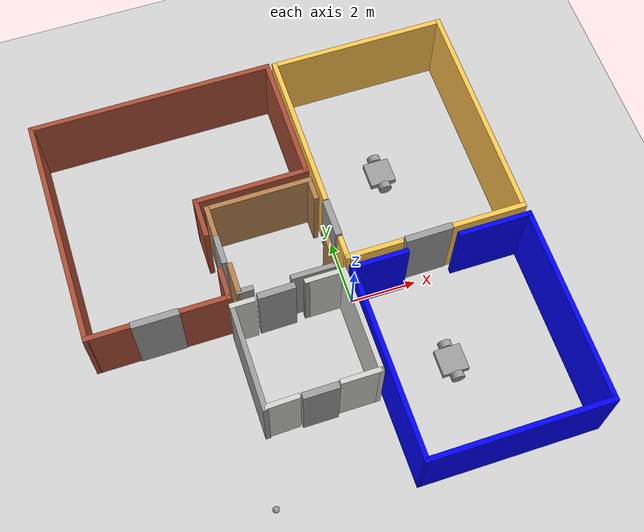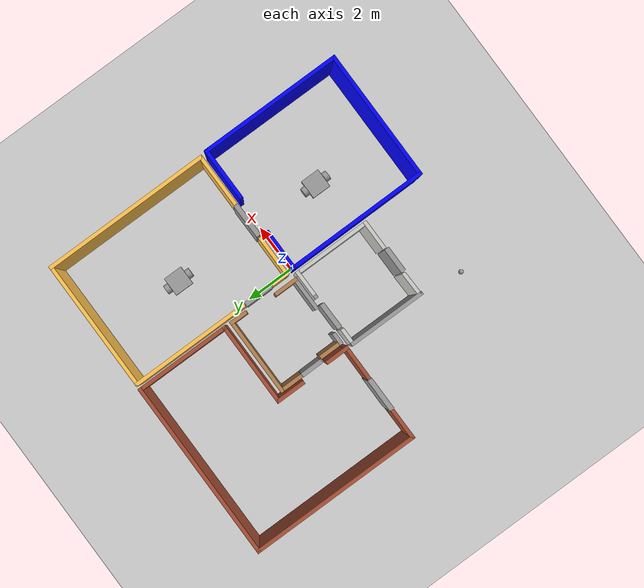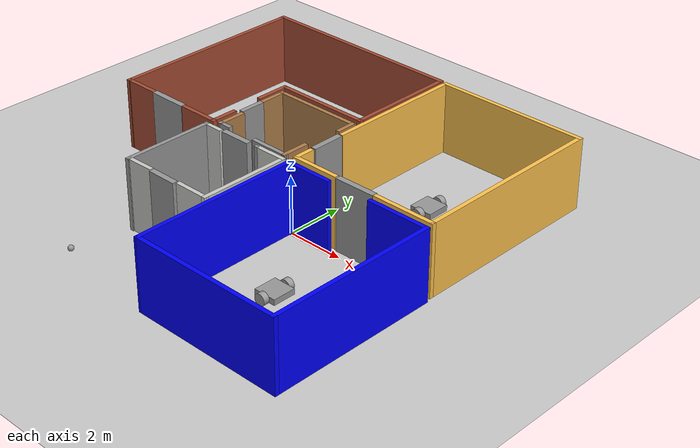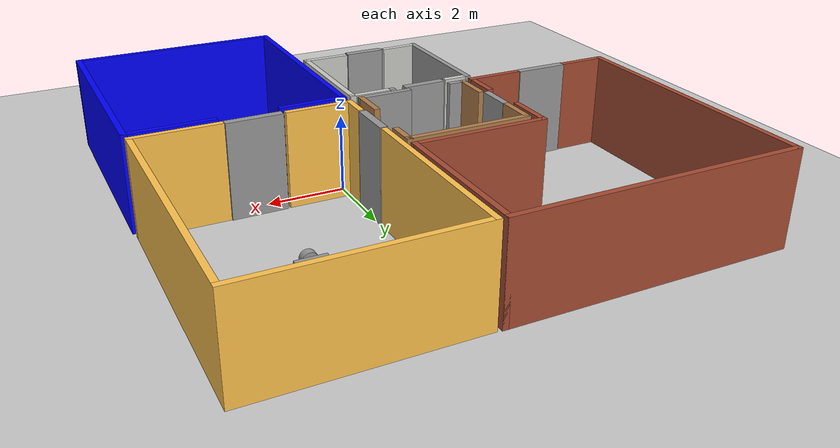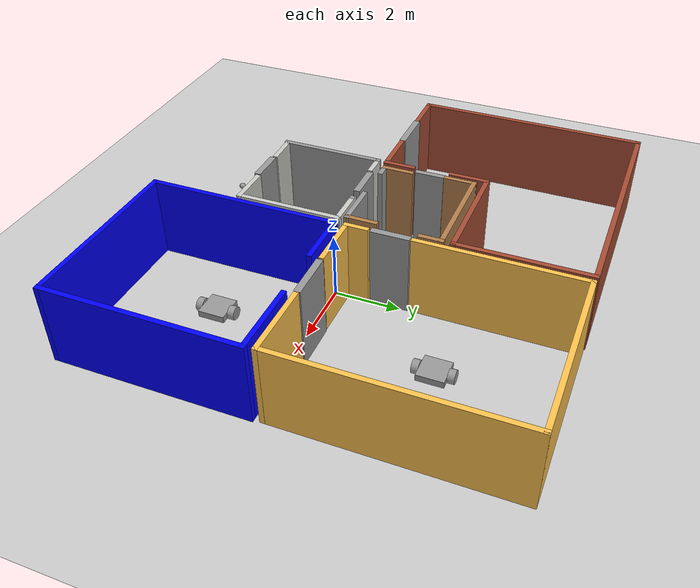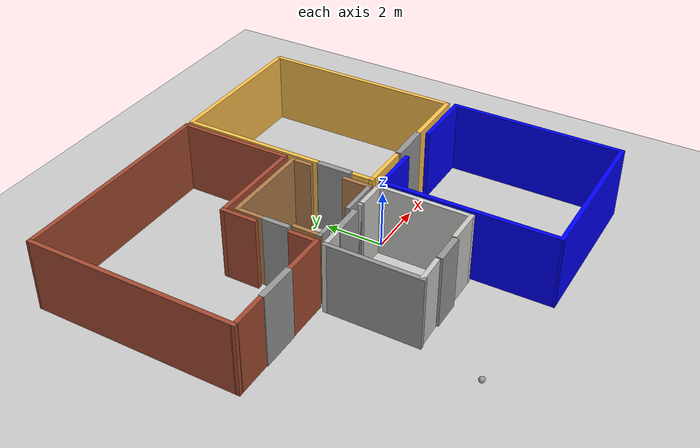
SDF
<sdf version="1.7">
 <world name="default">
  <plugin name="welcome" filename="libwelcome.so"/>
  <light name="sun" type="directional">
   <pose>0 0 10 0 -0 0</pose>
   <diffuse>0.8 0.8 0.8 1</diffuse>
   <specular>0.2 0.2 0.2 1</specular>
   <attenuation>
    <range>1000</range>
    <constant>0.9</constant>
    <linear>0.01</linear>
    <quadratic>0.001</quadratic>
   </attenuation>
   <direction>-0.5 0.1 -0.9</direction>
   <spot><inner_angle>0</inner_angle><outer_angle>0</outer_angle><falloff>0</falloff></spot>
  </light>
  <model name="ground_plane">
   <static>1</static>
   <link name="link">
    <collision name="collision">
     <geometry><plane><normal>0 0 1</normal><size>100 100</size></plane></geometry>
     <surface>
      <contact><collide_bitmask>65535</collide_bitmask></contact>
      <friction><ode><mu>100</mu><mu2>50</mu2></ode></friction>
     </surface>
    </collision>
    <visual name="visual">
     <cast_shadows>0</cast_shadows>
     <geometry><plane><normal>0 0 1</normal><size>100 100</size></plane></geometry>
     <material>
      <script><uri>file://media/materials/scripts/gazebo.material</uri><name>Gazebo/Grey</name></script>
     </material>
    </visual>
   </link>
  </model>
  <gravity>0 0 -9.8</gravity>
  <magnetic_field>6e-06 2.3e-05 -4.2e-05</magnetic_field>
  <atmosphere type="adiabatic"/>
  <physics type="ode">
   <max_step_size>0.001</max_step_size>
   <real_time_factor>1</real_time_factor>
   <real_time_update_rate>1000</real_time_update_rate>
  </physics>
  <scene><ambient>0.4 0.4 0.4 1</ambient><background>0.7 0.7 0.7 1</background><shadows>1</shadows></scene>
  <spherical_coordinates>
   <surface_model>EARTH_WGS84</surface_model>
   <latitude_deg>0</latitude_deg>
   <longitude_deg>0</longitude_deg>
   <elevation>0</elevation>
   <heading_deg>0</heading_deg>
  </spherical_coordinates>
  <model name="Building_1">
   <pose>-1.20257 0.697906 0 0 -0 0</pose>
   <link name="Door_1">
    <collision name="Door_1_Collision">
     <geometry><box><size>0.9 0.17 2.5</size></box></geometry>
     <pose>0 0 1.25 0 -0 0</pose>
    </collision>
    <visual name="Door_1_Visual">
     <pose>0 0 1.25 0 -0 0</pose>
     <geometry><box><size>0.9 0.17 2.5</size></box></geometry>
     <material>
      <script><uri>file://media/materials/scripts/gazebo.material</uri><name>Gazebo/Grey</name></script>
     </material>
    </visual>
    <pose>-2.25547 0.961124 0 0 0 -1.56451</pose>
   </link>
   <link name="Door_2">
    <collision name="Door_2_Collision">
     <geometry><box><size>1.163 0.2 2.5</size></box></geometry>
     <pose>0 0 1.25 0 -0 0</pose>
    </collision>
    <visual name="Door_2_Visual">
     <pose>0 0 1.25 0 -0 0</pose>
     <geometry><box><size>1.163 0.2 2.5</size></box></geometry>
     <material>
      <script><uri>file://media/materials/scripts/gazebo.material</uri><name>Gazebo/Grey</name></script>
     </material>
    </visual>
    <pose>1.08147 0.950952 0 0 -0 1.57576</pose>
   </link>
   <link name="Door_3">
    <collision name="Door_3_Collision">
     <geometry><box><size>1.112 0.2 2.5</size></box></geometry>
     <pose>0 0 1.25 0 -0 0</pose>
    </collision>
    <visual name="Door_3_Visual">
     <pose>0 0 1.25 0 -0 0</pose>
     <geometry><box><size>1.112 0.2 2.5</size></box></geometry>
     <material>
      <script><uri>file://media/materials/scripts/gazebo.material</uri><name>Gazebo/Grey</name></script>
     </material>
    </visual>
    <pose>-1.12475 -0.741125 0 0 -0 -3.13157</pose>
   </link>
   <link name="Door_4">
    <collision name="Door_4_Collision">
     <geometry><box><size>1.43038 0.2 2.5</size></box></geometry>
     <pose>0 0 1.25 0 -0 0</pose>
    </collision>
    <visual name="Door_4_Visual">
     <pose>0 0 1.25 0 -0 0</pose>
     <geometry><box><size>1.43038 0.2 2.5</size></box></geometry>
     <material>
      <script><uri>file://media/materials/scripts/gazebo.material</uri><name>Gazebo/Grey</name></script>
     </material>
    </visual>
    <pose>3.54418 -0.359254 0 0 0 -3.13213</pose>
   </link>
   <link name="Door_5">
    <collision name="Door_5_Collision">
     <geometry><box><size>1.387 0.2 2.5</size></box></geometry>
     <pose>0 0 1.25 0 -0 0</pose>
    </collision>
    <visual name="Door_5_Visual">
     <pose>0 0 1.25 0 -0 0</pose>
     <geometry><box><size>1.387 0.2 2.5</size></box></geometry>
     <material>
      <script><uri>file://media/materials/scripts/gazebo.material</uri><name>Gazebo/Grey</name></script>
     </material>
    </visual>
    <pose>-4.54403 -0.50509 0 0 -0 0</pose>
   </link>
   <link name="Wall_11">
    <collision name="Wall_11_Collision">
     <geometry><box><size>7.17849 0.15 2.5</size></box></geometry>
     <pose>0 0 1.25 0 -0 0</pose>
    </collision>
    <visual name="Wall_11_Visual">
     <pose>0 0 1.25 0 -0 0</pose>
     <geometry><box><size>7.17849 0.15 2.5</size></box></geometry>
     <material>
      <script><uri>file://media/materials/scripts/gazebo.material</uri><name>Gazebo/Bricks</name></script>
      <ambient>1 1 1 1</ambient>
     </material>
     <meta><layer>0</layer></meta>
    </visual>
    <pose>-6.49932 3.00434 0 0 -0 1.57037</pose>
   </link>
   <link name="Wall_13">
    <collision name="Wall_13_Collision">
     <geometry><box><size>5 0.15 2.5</size></box></geometry>
     <pose>0 0 1.25 0 -0 0</pose>
    </collision>
    <visual name="Wall_13_Visual">
     <pose>0 0 1.25 0 -0 0</pose>
     <geometry><box><size>5 0.15 2.5</size></box></geometry>
     <material>
      <script><uri>file://media/materials/scripts/gazebo.material</uri><name>Gazebo/Grey</name></script>
      <ambient>1 0.764706 0.305882 1</ambient>
     </material>
     <meta><layer>0</layer></meta>
    </visual>
    <pose>1.09218 4.06384 0 0 -0 -1.5708</pose>
   </link>
   <link name="Wall_15">
    <collision name="Wall_15_Collision">
     <geometry><box><size>5.5 0.15 2.5</size></box></geometry>
     <pose>0 0 1.25 0 -0 0</pose>
    </collision>
    <visual name="Wall_15_Visual">
     <pose>0 0 1.25 0 -0 0</pose>
     <geometry><box><size>5.5 0.15 2.5</size></box></geometry>
     <material>
      <script><uri>file://media/materials/scripts/gazebo.material</uri><name>Gazebo/Grey</name></script>
      <ambient>1 0.764706 0.305882 1</ambient>
     </material>
     <meta><layer>0</layer></meta>
    </visual>
    <pose>3.76731 6.48888 0 0 -0 1.2e-05</pose>
   </link>
   <link name="Wall_16">
    <collision name="Wall_16_Collision">
     <geometry><box><size>7 0.15 2.5</size></box></geometry>
     <pose>0 0 1.25 0 -0 0</pose>
    </collision>
    <visual name="Wall_16_Visual">
     <pose>0 0 1.25 0 -0 0</pose>
     <geometry><box><size>7 0.15 2.5</size></box></geometry>
     <material>
      <script><uri>file://media/materials/scripts/gazebo.material</uri><name>Gazebo/Grey</name></script>
      <ambient>1 0.764706 0.305882 1</ambient>
     </material>
     <meta><layer>0</layer></meta>
    </visual>
    <pose>6.44245 3.06391 0 0 -0 -1.5708</pose>
   </link>
   <link name="Wall_20">
    <collision name="Wall_20_Collision">
     <geometry><box><size>0.75 0.15 2.5</size></box></geometry>
     <pose>0 0 1.25 0 -0 0</pose>
    </collision>
    <visual name="Wall_20_Visual">
     <pose>0 0 1.25 0 -0 0</pose>
     <geometry><box><size>0.75 0.15 2.5</size></box></geometry>
     <material>
      <script><uri>file://media/materials/scripts/gazebo.material</uri><name>Gazebo/Grey</name></script>
      <ambient>1 0.764706 0.305882 1</ambient>
     </material>
     <meta><layer>0</layer></meta>
    </visual>
    <pose>1.09245 -0.061091 0 0 -0 1.5708</pose>
   </link>
   <link name="Wall_29">
    <collision name="Wall_29_Collision">
     <geometry><box><size>3.5 0.15 2.5</size></box></geometry>
     <pose>0 0 1.25 0 -0 0</pose>
    </collision>
    <visual name="Wall_29_Visual">
     <pose>0 0 1.25 0 -0 0</pose>
     <geometry><box><size>3.5 0.15 2.5</size></box></geometry>
     <material>
      <script><uri>file://media/materials/scripts/gazebo.material</uri><name>Gazebo/Bricks</name></script>
      <ambient>1 1 1 1</ambient>
     </material>
     <meta><layer>0</layer></meta>
    </visual>
    <pose>-0.822824 2.66884 0 0 -0 3.14159</pose>
   </link>
   <link name="Wall_3">
    <collision name="Wall_3_Collision">
     <geometry><box><size>7.5 0.15 2.5</size></box></geometry>
     <pose>0 0 1.25 0 -0 0</pose>
    </collision>
    <visual name="Wall_3_Visual">
     <pose>0 0 1.25 0 -0 0</pose>
     <geometry><box><size>7.5 0.15 2.5</size></box></geometry>
     <material>
      <script><uri>file://media/materials/scripts/gazebo.material</uri><name>Gazebo/Bricks</name></script>
      <ambient>1 1 1 1</ambient>
     </material>
     <meta><layer>0</layer></meta>
    </visual>
    <pose>-2.82282 6.51884 0 0 -0 0</pose>
   </link>
   <link name="Wall_30">
    <collision name="Wall_30_Collision">
     <geometry><box><size>1.25 0.15 2.5</size></box></geometry>
     <pose>0 0 1.25 0 -0 0</pose>
    </collision>
    <visual name="Wall_30_Visual">
     <pose>0 0 1.25 0 -0 0</pose>
     <geometry><box><size>1.25 0.15 2.5</size></box></geometry>
     <material>
      <script><uri>file://media/materials/scripts/gazebo.material</uri><name>Gazebo/Bricks</name></script>
      <ambient>1 1 1 1</ambient>
     </material>
     <meta><layer>0</layer></meta>
    </visual>
    <pose>-2.49782 2.11884 0 0 -0 -1.5708</pose>
   </link>
   <link name="Wall_32">
    <collision name="Wall_32_Collision">
     <geometry><box><size>1 0.15 2.5</size></box></geometry>
     <pose>0 0 1.25 0 -0 0</pose>
    </collision>
    <visual name="Wall_32_Visual">
     <pose>0 0 1.25 0 -0 0</pose>
     <geometry><box><size>1 0.15 2.5</size></box></geometry>
     <material>
      <script><uri>file://media/materials/scripts/gazebo.material</uri><name>Gazebo/Wood</name></script>
      <ambient>1 1 1 1</ambient>
     </material>
     <meta><layer>0</layer></meta>
    </visual>
    <pose>-2.25582 1.91284 0 0 -0 1.5708</pose>
   </link>
   <link name="Wall_33">
    <collision name="Wall_33_Collision">
     <geometry><box><size>3.25 0.15 2.5</size></box></geometry>
     <pose>0 0 1.25 0 -0 0</pose>
    </collision>
    <visual name="Wall_33_Visual">
     <pose>0 0 1.25 0 -0 0</pose>
     <geometry><box><size>3.25 0.15 2.5</size></box></geometry>
     <material>
      <script><uri>file://media/materials/scripts/gazebo.material</uri><name>Gazebo/Wood</name></script>
      <ambient>1 1 1 1</ambient>
     </material>
     <meta><layer>0</layer></meta>
    </visual>
    <pose>-0.705824 2.33784 0 0 -0 0</pose>
   </link>
   <link name="Wall_34">
    <collision name="Wall_34_Collision">
     <geometry><box><size>0.75 0.15 2.5</size></box></geometry>
     <pose>0 0 1.25 0 -0 0</pose>
    </collision>
    <visual name="Wall_34_Visual">
     <pose>0 0 1.25 0 -0 0</pose>
     <geometry><box><size>0.75 0.15 2.5</size></box></geometry>
     <material>
      <script><uri>file://media/materials/scripts/gazebo.material</uri><name>Gazebo/Wood</name></script>
      <ambient>1 1 1 1</ambient>
     </material>
     <meta><layer>0</layer></meta>
    </visual>
    <pose>0.844176 2.03784 0 0 -0 -1.5708</pose>
   </link>
   <link name="Wall_4">
    <collision name="Wall_4_Collision">
     <geometry><box><size>4 0.15 2.5</size></box></geometry>
     <pose>0 0 1.25 0 -0 0</pose>
    </collision>
    <visual name="Wall_4_Visual">
     <pose>0 0 1.25 0 -0 0</pose>
     <geometry><box><size>4 0.15 2.5</size></box></geometry>
     <material>
      <script><uri>file://media/materials/scripts/gazebo.material</uri><name>Gazebo/Bricks</name></script>
      <ambient>1 1 1 1</ambient>
     </material>
     <meta><layer>0</layer></meta>
    </visual>
    <pose>0.852176 4.59384 0 0 -0 -1.5708</pose>
   </link>
   <link name="Wall_43">
    <collision name="Wall_43_Collision">
     <geometry><box><size>1 0.15 2.5</size></box></geometry>
     <pose>0 0 1.25 0 -0 0</pose>
    </collision>
    <visual name="Wall_43_Visual">
     <pose>0 0 1.25 0 -0 0</pose>
     <geometry><box><size>1 0.15 2.5</size></box></geometry>
     <material>
      <script><uri>file://media/materials/scripts/gazebo.material</uri><name>Gazebo/Wood</name></script>
      <ambient>1 1 1 1</ambient>
     </material>
     <meta><layer>0</layer></meta>
    </visual>
    <pose>0.726223 -0.064068 0 0 -0 1.5708</pose>
   </link>
   <link name="Wall_45">
    <collision name="Wall_45_Collision">
     <geometry><box><size>0.5 0.15 2.5</size></box></geometry>
     <pose>0 0 1.25 0 -0 0</pose>
    </collision>
    <visual name="Wall_45_Visual">
     <pose>0 0 1.25 0 -0 0</pose>
     <geometry><box><size>0.5 0.15 2.5</size></box></geometry>
     <material>
      <script><uri>file://media/materials/scripts/gazebo.material</uri><name>Gazebo/Grey</name></script>
      <ambient>1 1 1 1</ambient>
     </material>
     <meta><layer>0</layer></meta>
    </visual>
    <pose>-1.95262 -0.447317 0 0 -0 3.14067</pose>
   </link>
   <link name="Wall_46">
    <collision name="Wall_46_Collision">
     <geometry><box><size>1 0.15 2.5</size></box></geometry>
     <pose>0 0 1.25 0 -0 0</pose>
    </collision>
    <visual name="Wall_46_Visual">
     <pose>0 0 1.25 0 -0 0</pose>
     <geometry><box><size>1 0.15 2.5</size></box></geometry>
     <material>
      <script><uri>file://media/materials/scripts/gazebo.material</uri><name>Gazebo/Wood</name></script>
      <ambient>1 1 1 1</ambient>
     </material>
     <meta><layer>0</layer></meta>
    </visual>
    <pose>-2.12782 -0.022155 0 0 -0 1.5708</pose>
   </link>
   <link name="Wall_50">
    <collision name="Wall_50_Collision">
     <geometry><box><size>1 0.15 2.5</size></box></geometry>
     <pose>0 0 1.25 0 -0 0</pose>
    </collision>
    <visual name="Wall_50_Visual">
     <pose>0 0 1.25 0 -0 0</pose>
     <geometry><box><size>1 0.15 2.5</size></box></geometry>
     <material>
      <script><uri>file://media/materials/scripts/gazebo.material</uri><name>Gazebo/CeilingTiled</name></script>
      <ambient>1 1 1 1</ambient>
     </material>
     <meta><layer>0</layer></meta>
    </visual>
    <pose>-1.93527 -3.85039 0 0 -0 -3.11679</pose>
   </link>
   <link name="Wall_53">
    <collision name="Wall_53_Collision">
     <geometry><box><size>1.25 0.15 2.5</size></box></geometry>
     <pose>0 0 1.25 0 -0 0</pose>
    </collision>
    <visual name="Wall_53_Visual">
     <pose>0 0 1.25 0 -0 0</pose>
     <geometry><box><size>1.25 0.15 2.5</size></box></geometry>
     <material>
      <script><uri>file://media/materials/scripts/gazebo.material</uri><name>Gazebo/CeilingTiled</name></script>
      <ambient>1 1 1 1</ambient>
     </material>
     <meta><layer>0</layer></meta>
    </visual>
    <pose>0.326535 -3.81399 0 0 -0 0</pose>
   </link>
   <link name="Wall_54">
    <collision name="Wall_54_Collision">
     <geometry><box><size>3.25 0.15 2.5</size></box></geometry>
     <pose>0 0 1.25 0 -0 0</pose>
    </collision>
    <visual name="Wall_54_Visual">
     <pose>0 0 1.25 0 -0 0</pose>
     <geometry><box><size>3.25 0.15 2.5</size></box></geometry>
     <material>
      <script><uri>file://media/materials/scripts/gazebo.material</uri><name>Gazebo/CeilingTiled</name></script>
      <ambient>1 1 1 1</ambient>
     </material>
     <meta><layer>0</layer></meta>
    </visual>
    <pose>0.876356 -2.26407 0 0 -0 1.57091</pose>
   </link>
   <link name="Wall_55">
    <collision name="Wall_55_Collision">
     <geometry><box><size>1.25 0.15 2.5</size></box></geometry>
     <pose>0 0 1.25 0 -0 0</pose>
    </collision>
    <visual name="Wall_55_Visual">
     <pose>0 0 1.25 0 -0 0</pose>
     <geometry><box><size>1.25 0.15 2.5</size></box></geometry>
     <material>
      <script><uri>file://media/materials/scripts/gazebo.material</uri><name>Gazebo/CeilingTiled</name></script>
      <ambient>1 1 1 1</ambient>
     </material>
     <meta><layer>0</layer></meta>
    </visual>
    <pose>0.326176 -0.714155 0 0 -0 3.14159</pose>
   </link>
   <link name="Wall_57">
    <collision name="Wall_57_Collision">
     <geometry><box><size>1 0.15 2.5</size></box></geometry>
     <pose>0 0 1.25 0 -0 0</pose>
    </collision>
    <visual name="Wall_57_Visual">
     <pose>0 0 1.25 0 -0 0</pose>
     <geometry><box><size>1 0.15 2.5</size></box></geometry>
     <material>
      <script><uri>file://media/materials/scripts/gazebo.material</uri><name>Gazebo/Bricks</name></script>
      <ambient>1 1 1 1</ambient>
     </material>
     <meta><layer>0</layer></meta>
    </visual>
    <pose>-2.42682 -0.085155 0 0 -0 -1.5708</pose>
   </link>
   <link name="Wall_58">
    <collision name="Wall_58_Collision">
     <geometry><box><size>1.5 0.15 2.5</size></box></geometry>
     <pose>0 0 1.25 0 -0 0</pose>
    </collision>
    <visual name="Wall_58_Visual">
     <pose>0 0 1.25 0 -0 0</pose>
     <geometry><box><size>1.5 0.15 2.5</size></box></geometry>
     <material>
      <script><uri>file://media/materials/scripts/gazebo.material</uri><name>Gazebo/Bricks</name></script>
      <ambient>1 1 1 1</ambient>
     </material>
     <meta><layer>0</layer></meta>
    </visual>
    <pose>-3.10182 -0.510155 0 0 -0 3.14159</pose>
   </link>
   <link name="Wall_60">
    <collision name="Wall_60_Collision">
     <geometry><box><size>1.3356 0.15 2.5</size></box></geometry>
     <pose>0 0 1.25 0 -0 0</pose>
    </collision>
    <visual name="Wall_60_Visual">
     <pose>0 0 1.25 0 -0 0</pose>
     <geometry><box><size>1.3356 0.15 2.5</size></box></geometry>
     <material>
      <script><uri>file://media/materials/scripts/gazebo.material</uri><name>Gazebo/Bricks</name></script>
      <ambient>1 1 1 1</ambient>
     </material>
     <meta><layer>0</layer></meta>
    </visual>
    <pose>-5.90782 -0.507155 0 0 -0 -3.13653</pose>
   </link>
   <link name="Wall_63">
    <collision name="Wall_63_Collision">
     <geometry><box><size>3.25 0.15 2.5</size></box></geometry>
     <pose>0 0 1.25 0 -0 0</pose>
    </collision>
    <visual name="Wall_63_Visual">
     <pose>0 0 1.25 0 -0 0</pose>
     <geometry><box><size>3.25 0.15 2.5</size></box></geometry>
     <material>
      <script><uri>file://media/materials/scripts/gazebo.material</uri><name>Gazebo/Grey</name></script>
      <ambient>1 1 1 1</ambient>
     </material>
     <meta><layer>0</layer></meta>
    </visual>
    <pose>-2.4296 -2.34418 0 0 -0 -1.5708</pose>
   </link>
   <link name="Wall_65">
    <collision name="Wall_65_Collision">
     <geometry><box><size>0.75 0.15 2.5</size></box></geometry>
     <pose>0 0 1.25 0 -0 0</pose>
    </collision>
    <visual name="Wall_65_Visual">
     <pose>0 0 1.25 0 -0 0</pose>
     <geometry><box><size>0.75 0.15 2.5</size></box></geometry>
     <material>
      <script><uri>file://media/materials/scripts/gazebo.material</uri><name>Gazebo/CeilingTiled</name></script>
      <ambient>1 1 1 1</ambient>
     </material>
     <meta><layer>0</layer></meta>
    </visual>
    <pose>-2.1296 -0.79418 0 0 -0 0</pose>
   </link>
   <link name="Wall_67">
    <collision name="Wall_67_Collision">
     <geometry><box><size>0.15 0.15 2.5</size></box></geometry>
     <pose>0 0 1.25 0 -0 0</pose>
    </collision>
    <visual name="Wall_67_Visual">
     <pose>0 0 1.25 0 -0 0</pose>
     <geometry><box><size>0.15 0.15 2.5</size></box></geometry>
     <material>
      <script><uri>file://media/materials/scripts/gazebo.material</uri><name>Gazebo/Grey</name></script>
      <ambient>1 1 1 1</ambient>
     </material>
     <meta><layer>0</layer></meta>
    </visual>
    <pose>-0.223824 -0.714155 0 0 -0 0</pose>
   </link>
   <link name="Wall_70">
    <collision name="Wall_70_Collision">
     <geometry><box><size>1.42886 0.15 2.5</size></box></geometry>
     <pose>0 0 1.25 0 -0 0</pose>
    </collision>
    <visual name="Wall_70_Visual">
     <pose>0 0 1.25 0 -0 0</pose>
     <geometry><box><size>1.42886 0.15 2.5</size></box></geometry>
     <material>
      <script><uri>file://media/materials/scripts/gazebo.material</uri><name>Gazebo/Grey</name></script>
      <ambient>1 1 1 1</ambient>
     </material>
     <meta><layer>0</layer></meta>
    </visual>
    <pose>0.086794 -0.487296 0 0 -0 -0.00277</pose>
   </link>
   <link name="Wall_72">
    <collision name="Wall_72_Collision">
     <geometry><box><size>1.75 0.15 2.5</size></box></geometry>
     <pose>0 0 1.25 0 -0 0</pose>
    </collision>
    <visual name="Wall_72_Visual">
     <pose>0 0 1.25 0 -0 0</pose>
     <geometry><box><size>1.75 0.15 2.5</size></box></geometry>
     <material>
      <script><uri>file://media/materials/scripts/gazebo.material</uri><name>Gazebo/Grey</name></script>
      <ambient>0 0 1 1</ambient>
     </material>
     <meta><layer>0</layer></meta>
    </visual>
    <pose>1.92837 -0.705222 0 0 -0 0</pose>
   </link>
   <link name="Wall_74">
    <collision name="Wall_74_Collision">
     <geometry><box><size>2.25 0.15 2.5</size></box></geometry>
     <pose>0 0 1.25 0 -0 0</pose>
    </collision>
    <visual name="Wall_74_Visual">
     <pose>0 0 1.25 0 -0 0</pose>
     <geometry><box><size>2.25 0.15 2.5</size></box></geometry>
     <material>
      <script><uri>file://media/materials/scripts/gazebo.material</uri><name>Gazebo/Grey</name></script>
      <ambient>0 0 1 1</ambient>
     </material>
     <meta><layer>0</layer></meta>
    </visual>
    <pose>5.45099 -0.668554 0 0 -0 0</pose>
   </link>
   <link name="Wall_76">
    <collision name="Wall_76_Collision">
     <geometry><box><size>6 0.15 2.5</size></box></geometry>
     <pose>0 0 1.25 0 -0 0</pose>
    </collision>
    <visual name="Wall_76_Visual">
     <pose>0 0 1.25 0 -0 0</pose>
     <geometry><box><size>6 0.15 2.5</size></box></geometry>
     <material>
      <script><uri>file://media/materials/scripts/gazebo.material</uri><name>Gazebo/Grey</name></script>
      <ambient>0 0 1 1</ambient>
     </material>
     <meta><layer>0</layer></meta>
    </visual>
    <pose>6.50099 -3.59355 0 0 -0 -1.5708</pose>
   </link>
   <link name="Wall_77">
    <collision name="Wall_77_Collision">
     <geometry><box><size>5.5 0.15 2.5</size></box></geometry>
     <pose>0 0 1.25 0 -0 0</pose>
    </collision>
    <visual name="Wall_77_Visual">
     <pose>0 0 1.25 0 -0 0</pose>
     <geometry><box><size>5.5 0.15 2.5</size></box></geometry>
     <material>
      <script><uri>file://media/materials/scripts/gazebo.material</uri><name>Gazebo/Grey</name></script>
      <ambient>0 0 1 1</ambient>
     </material>
     <meta><layer>0</layer></meta>
    </visual>
    <pose>3.82599 -6.51855 0 0 -0 3.14159</pose>
   </link>
   <link name="Wall_78">
    <collision name="Wall_78_Collision">
     <geometry><box><size>5.96338 0.15 2.5</size></box></geometry>
     <pose>0 0 1.25 0 -0 0</pose>
    </collision>
    <visual name="Wall_78_Visual">
     <pose>0 0 1.25 0 -0 0</pose>
     <geometry><box><size>5.96338 0.15 2.5</size></box></geometry>
     <material>
      <script><uri>file://media/materials/scripts/gazebo.material</uri><name>Gazebo/Grey</name></script>
      <ambient>0 0 1 1</ambient>
     </material>
     <meta><layer>0</layer></meta>
    </visual>
    <pose>1.13968 -3.61189 0 0 -0 1.57469</pose>
   </link>
   <link name="Wall_80">
    <collision name="Wall_80_Collision">
     <geometry><box><size>1.75 0.15 2.5</size></box></geometry>
     <pose>0 0 1.25 0 -0 0</pose>
    </collision>
    <visual name="Wall_80_Visual">
     <pose>0 0 1.25 0 -0 0</pose>
     <geometry><box><size>1.75 0.15 2.5</size></box></geometry>
     <material>
      <script><uri>file://media/materials/scripts/gazebo.material</uri><name>Gazebo/Grey</name></script>
      <ambient>1 0.764706 0.305882 1</ambient>
     </material>
     <meta><layer>0</layer></meta>
    </visual>
    <pose>1.89245 -0.361091 0 0 -0 0</pose>
   </link>
   <link name="Wall_84">
    <collision name="Wall_84_Collision">
     <geometry><box><size>2.25 0.15 2.5</size></box></geometry>
     <pose>0 0 1.25 0 -0 0</pose>
    </collision>
    <visual name="Wall_84_Visual">
     <pose>0 0 1.25 0 -0 0</pose>
     <geometry><box><size>2.25 0.15 2.5</size></box></geometry>
     <material>
      <script><uri>file://media/materials/scripts/gazebo.material</uri><name>Gazebo/Grey</name></script>
      <ambient>1 0.764706 0.305882 1</ambient>
     </material>
     <meta><layer>0</layer></meta>
    </visual>
    <pose>5.39245 -0.361091 0 0 -0 3.14159</pose>
   </link>
   <link name="Window_0">
    <collision name="Window_0_Collision">
     <geometry><box><size>1.05 0.2 2.5</size></box></geometry>
     <pose>0 0 1.25 0 -0 0</pose>
    </collision>
    <visual name="Window_0_Visual">
     <pose>0 0 1.25 0 -0 0</pose>
     <geometry><box><size>1.05 0.2 2.5</size></box></geometry>
     <material>
      <script><uri>file://media/materials/scripts/gazebo.material</uri><name>Gazebo/Grey</name></script>
     </material>
    </visual>
    <pose>-0.863204 -3.87716 0 0 -0 0</pose>
   </link>
   <static>1</static>
  </model>
  <model name="Project1_bot">
   <link name="link_0">
    <inertial>
     <mass>1</mass>
     <inertia>
      <ixx>0.166667</ixx>
      <ixy>0</ixy>
      <ixz>0</ixz>
      <iyy>0.166667</iyy>
      <iyz>0</iyz>
      <izz>0.166667</izz>
     </inertia>
    </inertial>
    <visual name="visual">
     <geometry><box><size>0.8 0.8 0.2</size></box></geometry>
     <material>
      <lighting>1</lighting>
      <script><uri>file://media/materials/scripts/gazebo.material</uri><name>Gazebo/Grey</name></script>
      <shader type="pixel"><normal_map>__default__</normal_map></shader>
      <ambient>0.3 0.3 0.3 1</ambient>
      <diffuse>0.7 0.7 0.7 1</diffuse>
      <specular>0.01 0.01 0.01 1</specular>
      <emissive>0 0 0 1</emissive>
     </material>
    </visual>
    <collision name="collision">
     <geometry><box><size>0.8 0.8 0.2</size></box></geometry>
     <surface>
      <friction>
       <ode><mu>1</mu><mu2>1</mu2><fdir1>0 0 0</fdir1><slip1>0</slip1><slip2>0</slip2></ode>
       <torsional>
        <coefficient>1</coefficient>
        <patch_radius>0</patch_radius>
        <surface_radius>0</surface_radius>
        <use_patch_radius>1</use_patch_radius>
        <ode><slip>0</slip></ode>
       </torsional>
      </friction>
      <bounce><restitution_coefficient>0</restitution_coefficient><threshold>1e+06</threshold></bounce>
      <contact>
       <collide_without_contact>0</collide_without_contact>
       <collide_without_contact_bitmask>1</collide_without_contact_bitmask>
       <collide_bitmask>1</collide_bitmask>
       <ode>
        <soft_cfm>0</soft_cfm>
        <soft_erp>0.2</soft_erp>
        <kp>1e+13</kp>
        <kd>1</kd>
        <max_vel>0.01</max_vel>
        <min_depth>0</min_depth>
       </ode>
       <bullet>
        <split_impulse>1</split_impulse>
        <split_impulse_penetration_threshold>-0.01</split_impulse_penetration_threshold>
        <soft_cfm>0</soft_cfm>
        <soft_erp>0.2</soft_erp>
        <kp>1e+13</kp>
        <kd>1</kd>
       </bullet>
      </contact>
     </surface>
    </collision>
   </link>
   <link name="link_1">
    <inertial>
     <mass>1</mass>
     <inertia><ixx>0.145833</ixx><ixy>0</ixy><ixz>0</ixz><iyy>0.145833</iyy><iyz>0</iyz><izz>0.125</izz></inertia>
    </inertial>
    <pose>-0 -0.500019 0 1.5707 -0 0</pose>
    <visual name="visual">
     <geometry><cylinder><radius>0.2</radius><length>0.2</length></cylinder></geometry>
     <material>
      <lighting>1</lighting>
      <script><uri>file://media/materials/scripts/gazebo.material</uri><name>Gazebo/Grey</name></script>
      <shader type="pixel"><normal_map>__default__</normal_map></shader>
      <ambient>0.3 0.3 0.3 1</ambient>
      <diffuse>0.7 0.7 0.7 1</diffuse>
      <specular>0.01 0.01 0.01 1</specular>
      <emissive>0 0 0 1</emissive>
     </material>
    </visual>
    <collision name="collision">
     <geometry><cylinder><radius>0.2</radius><length>0.2</length></cylinder></geometry>
     <surface>
      <friction>
       <ode><mu>1</mu><mu2>1</mu2><fdir1>0 0 0</fdir1><slip1>0</slip1><slip2>0</slip2></ode>
       <torsional>
        <coefficient>1</coefficient>
        <patch_radius>0</patch_radius>
        <surface_radius>0</surface_radius>
        <use_patch_radius>1</use_patch_radius>
        <ode><slip>0</slip></ode>
       </torsional>
      </friction>
      <bounce><restitution_coefficient>0</restitution_coefficient><threshold>1e+06</threshold></bounce>
      <contact>
       <collide_without_contact>0</collide_without_contact>
       <collide_without_contact_bitmask>1</collide_without_contact_bitmask>
       <collide_bitmask>1</collide_bitmask>
       <ode>
        <soft_cfm>0</soft_cfm>
        <soft_erp>0.2</soft_erp>
        <kp>1e+13</kp>
        <kd>1</kd>
        <max_vel>0.01</max_vel>
        <min_depth>0</min_depth>
       </ode>
       <bullet>
        <split_impulse>1</split_impulse>
        <split_impulse_penetration_threshold>-0.01</split_impulse_penetration_threshold>
        <soft_cfm>0</soft_cfm>
        <soft_erp>0.2</soft_erp>
        <kp>1e+13</kp>
        <kd>1</kd>
       </bullet>
      </contact>
     </surface>
    </collision>
   </link>
   <link name="link_1_clone">
    <inertial>
     <mass>1</mass>
     <inertia><ixx>0.145833</ixx><ixy>0</ixy><ixz>0</ixz><iyy>0.145833</iyy><iyz>0</iyz><izz>0.125</izz></inertia>
    </inertial>
    <pose>-0 0.500019 0 1.5707 -0 0</pose>
    <visual name="visual">
     <geometry><cylinder><radius>0.2</radius><length>0.2</length></cylinder></geometry>
     <material>
      <lighting>1</lighting>
      <script><uri>file://media/materials/scripts/gazebo.material</uri><name>Gazebo/Grey</name></script>
      <shader type="pixel"><normal_map>__default__</normal_map></shader>
      <ambient>0.3 0.3 0.3 1</ambient>
      <diffuse>0.7 0.7 0.7 1</diffuse>
      <specular>0.01 0.01 0.01 1</specular>
      <emissive>0 0 0 1</emissive>
     </material>
    </visual>
    <collision name="collision">
     <geometry><cylinder><radius>0.2</radius><length>0.2</length></cylinder></geometry>
     <surface>
      <friction>
       <ode><mu>1</mu><mu2>1</mu2><fdir1>0 0 0</fdir1><slip1>0</slip1><slip2>0</slip2></ode>
       <torsional>
        <coefficient>1</coefficient>
        <patch_radius>0</patch_radius>
        <surface_radius>0</surface_radius>
        <use_patch_radius>1</use_patch_radius>
        <ode><slip>0</slip></ode>
       </torsional>
      </friction>
      <bounce><restitution_coefficient>0</restitution_coefficient><threshold>1e+06</threshold></bounce>
      <contact>
       <collide_without_contact>0</collide_without_contact>
       <collide_without_contact_bitmask>1</collide_without_contact_bitmask>
       <collide_bitmask>1</collide_bitmask>
       <ode>
        <soft_cfm>0</soft_cfm>
        <soft_erp>0.2</soft_erp>
        <kp>1e+13</kp>
        <kd>1</kd>
        <max_vel>0.01</max_vel>
        <min_depth>0</min_depth>
       </ode>
       <bullet>
        <split_impulse>1</split_impulse>
        <split_impulse_penetration_threshold>-0.01</split_impulse_penetration_threshold>
        <soft_cfm>0</soft_cfm>
        <soft_erp>0.2</soft_erp>
        <kp>1e+13</kp>
        <kd>1</kd>
       </bullet>
      </contact>
     </surface>
    </collision>
   </link>
   <joint name="link_0_JOINT_0" type="revolute">
    <parent>link_0</parent>
    <child>link_1</child>
    <axis>
     <xyz>0 0 1</xyz>
     <limit>
      <lower>-1.79769e+308</lower>
      <upper>1.79769e+308</upper>
      <effort>-1</effort>
      <velocity>-1</velocity>
     </limit>
     <dynamics>
      <spring_reference>0</spring_reference>
      <spring_stiffness>0</spring_stiffness>
      <damping>0</damping>
     </dynamics>
    </axis>
    <physics>
     <ode><limit><cfm>0</cfm><erp>0.2</erp></limit><suspension><cfm>0</cfm><erp>0.2</erp></suspension></ode>
    </physics>
   </joint>
   <joint name="link_0_JOINT_1" type="revolute">
    <parent>link_0</parent>
    <child>link_1_clone</child>
    <axis>
     <xyz>0 0 1</xyz>
     <limit>
      <lower>-1.79769e+308</lower>
      <upper>1.79769e+308</upper>
      <effort>-1</effort>
      <velocity>-1</velocity>
     </limit>
     <dynamics>
      <spring_reference>0</spring_reference>
      <spring_stiffness>0</spring_stiffness>
      <damping>0</damping>
     </dynamics>
    </axis>
    <physics>
     <ode><limit><cfm>0</cfm><erp>0.2</erp></limit><suspension><cfm>0</cfm><erp>0.2</erp></suspension></ode>
    </physics>
   </joint>
   <static>0</static>
   <pose>2.2071 3.79291 0.200007 4e-06 -0 0</pose>
  </model>
  <model name="Project1_bot_clone">
   <link name="link_0">
    <inertial>
     <mass>1</mass>
     <inertia>
      <ixx>0.166667</ixx>
      <ixy>0</ixy>
      <ixz>0</ixz>
      <iyy>0.166667</iyy>
      <iyz>0</iyz>
      <izz>0.166667</izz>
     </inertia>
    </inertial>
    <visual name="visual">
     <geometry><box><size>0.8 0.8 0.2</size></box></geometry>
     <material>
      <lighting>1</lighting>
      <script><uri>file://media/materials/scripts/gazebo.material</uri><name>Gazebo/Grey</name></script>
      <shader type="pixel"><normal_map>__default__</normal_map></shader>
      <ambient>0.3 0.3 0.3 1</ambient>
      <diffuse>0.7 0.7 0.7 1</diffuse>
      <specular>0.01 0.01 0.01 1</specular>
      <emissive>0 0 0 1</emissive>
     </material>
    </visual>
    <collision name="collision">
     <geometry><box><size>0.8 0.8 0.2</size></box></geometry>
     <surface>
      <friction>
       <ode><mu>1</mu><mu2>1</mu2><fdir1>0 0 0</fdir1><slip1>0</slip1><slip2>0</slip2></ode>
       <torsional>
        <coefficient>1</coefficient>
        <patch_radius>0</patch_radius>
        <surface_radius>0</surface_radius>
        <use_patch_radius>1</use_patch_radius>
        <ode><slip>0</slip></ode>
       </torsional>
      </friction>
      <bounce><restitution_coefficient>0</restitution_coefficient><threshold>1e+06</threshold></bounce>
      <contact>
       <collide_without_contact>0</collide_without_contact>
       <collide_without_contact_bitmask>1</collide_without_contact_bitmask>
       <collide_bitmask>1</collide_bitmask>
       <ode>
        <soft_cfm>0</soft_cfm>
        <soft_erp>0.2</soft_erp>
        <kp>1e+13</kp>
        <kd>1</kd>
        <max_vel>0.01</max_vel>
        <min_depth>0</min_depth>
       </ode>
       <bullet>
        <split_impulse>1</split_impulse>
        <split_impulse_penetration_threshold>-0.01</split_impulse_penetration_threshold>
        <soft_cfm>0</soft_cfm>
        <soft_erp>0.2</soft_erp>
        <kp>1e+13</kp>
        <kd>1</kd>
       </bullet>
      </contact>
     </surface>
    </collision>
   </link>
   <link name="link_1">
    <inertial>
     <mass>1</mass>
     <inertia><ixx>0.145833</ixx><ixy>0</ixy><ixz>0</ixz><iyy>0.145833</iyy><iyz>0</iyz><izz>0.125</izz></inertia>
    </inertial>
    <pose>-0 -0.500019 0 1.5707 -0 0</pose>
    <visual name="visual">
     <geometry><cylinder><radius>0.2</radius><length>0.2</length></cylinder></geometry>
     <material>
      <lighting>1</lighting>
      <script><uri>file://media/materials/scripts/gazebo.material</uri><name>Gazebo/Grey</name></script>
      <shader type="pixel"><normal_map>__default__</normal_map></shader>
      <ambient>0.3 0.3 0.3 1</ambient>
      <diffuse>0.7 0.7 0.7 1</diffuse>
      <specular>0.01 0.01 0.01 1</specular>
      <emissive>0 0 0 1</emissive>
     </material>
    </visual>
    <collision name="collision">
     <geometry><cylinder><radius>0.2</radius><length>0.2</length></cylinder></geometry>
     <surface>
      <friction>
       <ode><mu>1</mu><mu2>1</mu2><fdir1>0 0 0</fdir1><slip1>0</slip1><slip2>0</slip2></ode>
       <torsional>
        <coefficient>1</coefficient>
        <patch_radius>0</patch_radius>
        <surface_radius>0</surface_radius>
        <use_patch_radius>1</use_patch_radius>
        <ode><slip>0</slip></ode>
       </torsional>
      </friction>
      <bounce><restitution_coefficient>0</restitution_coefficient><threshold>1e+06</threshold></bounce>
      <contact>
       <collide_without_contact>0</collide_without_contact>
       <collide_without_contact_bitmask>1</collide_without_contact_bitmask>
       <collide_bitmask>1</collide_bitmask>
       <ode>
        <soft_cfm>0</soft_cfm>
        <soft_erp>0.2</soft_erp>
        <kp>1e+13</kp>
        <kd>1</kd>
        <max_vel>0.01</max_vel>
        <min_depth>0</min_depth>
       </ode>
       <bullet>
        <split_impulse>1</split_impulse>
        <split_impulse_penetration_threshold>-0.01</split_impulse_penetration_threshold>
        <soft_cfm>0</soft_cfm>
        <soft_erp>0.2</soft_erp>
        <kp>1e+13</kp>
        <kd>1</kd>
       </bullet>
      </contact>
     </surface>
    </collision>
   </link>
   <link name="link_1_clone">
    <inertial>
     <mass>1</mass>
     <inertia><ixx>0.145833</ixx><ixy>0</ixy><ixz>0</ixz><iyy>0.145833</iyy><iyz>0</iyz><izz>0.125</izz></inertia>
    </inertial>
    <pose>-0 0.500019 0 1.5707 -0 0</pose>
    <visual name="visual">
     <geometry><cylinder><radius>0.2</radius><length>0.2</length></cylinder></geometry>
     <material>
      <lighting>1</lighting>
      <script><uri>file://media/materials/scripts/gazebo.material</uri><name>Gazebo/Grey</name></script>
      <shader type="pixel"><normal_map>__default__</normal_map></shader>
      <ambient>0.3 0.3 0.3 1</ambient>
      <diffuse>0.7 0.7 0.7 1</diffuse>
      <specular>0.01 0.01 0.01 1</specular>
      <emissive>0 0 0 1</emissive>
     </material>
    </visual>
    <collision name="collision">
     <geometry><cylinder><radius>0.2</radius><length>0.2</length></cylinder></geometry>
     <surface>
      <friction>
       <ode><mu>1</mu><mu2>1</mu2><fdir1>0 0 0</fdir1><slip1>0</slip1><slip2>0</slip2></ode>
       <torsional>
        <coefficient>1</coefficient>
        <patch_radius>0</patch_radius>
        <surface_radius>0</surface_radius>
        <use_patch_radius>1</use_patch_radius>
        <ode><slip>0</slip></ode>
       </torsional>
      </friction>
      <bounce><restitution_coefficient>0</restitution_coefficient><threshold>1e+06</threshold></bounce>
      <contact>
       <collide_without_contact>0</collide_without_contact>
       <collide_without_contact_bitmask>1</collide_without_contact_bitmask>
       <collide_bitmask>1</collide_bitmask>
       <ode>
        <soft_cfm>0</soft_cfm>
        <soft_erp>0.2</soft_erp>
        <kp>1e+13</kp>
        <kd>1</kd>
        <max_vel>0.01</max_vel>
        <min_depth>0</min_depth>
       </ode>
       <bullet>
        <split_impulse>1</split_impulse>
        <split_impulse_penetration_threshold>-0.01</split_impulse_penetration_threshold>
        <soft_cfm>0</soft_cfm>
        <soft_erp>0.2</soft_erp>
        <kp>1e+13</kp>
        <kd>1</kd>
       </bullet>
      </contact>
     </surface>
    </collision>
   </link>
   <joint name="link_0_JOINT_0" type="revolute">
    <parent>link_0</parent>
    <child>link_1</child>
    <axis>
     <xyz>0 0 1</xyz>
     <limit>
      <lower>-1.79769e+308</lower>
      <upper>1.79769e+308</upper>
      <effort>-1</effort>
      <velocity>-1</velocity>
     </limit>
     <dynamics>
      <spring_reference>0</spring_reference>
      <spring_stiffness>0</spring_stiffness>
      <damping>0</damping>
     </dynamics>
    </axis>
    <physics>
     <ode><limit><cfm>0</cfm><erp>0.2</erp></limit><suspension><cfm>0</cfm><erp>0.2</erp></suspension></ode>
    </physics>
   </joint>
   <joint name="link_0_JOINT_1" type="revolute">
    <parent>link_0</parent>
    <child>link_1_clone</child>
    <axis>
     <xyz>0 0 1</xyz>
     <limit>
      <lower>-1.79769e+308</lower>
      <upper>1.79769e+308</upper>
      <effort>-1</effort>
      <velocity>-1</velocity>
     </limit>
     <dynamics>
      <spring_reference>0</spring_reference>
      <spring_stiffness>0</spring_stiffness>
      <damping>0</damping>
     </dynamics>
    </axis>
    <physics>
     <ode><limit><cfm>0</cfm><erp>0.2</erp></limit><suspension><cfm>0</cfm><erp>0.2</erp></suspension></ode>
    </physics>
   </joint>
   <static>0</static>
   <pose>2.08957 -2.74039 0.200007 4e-06 -0 0</pose>
  </model>
  <model name="Untitled">
   <link name="link_0">
    <inertial>
     <mass>1</mass>
     <inertia><ixx>0.1</ixx><ixy>0</ixy><ixz>0</ixz><iyy>0.1</iyy><iyz>0</iyz><izz>0.1</izz></inertia>
    </inertial>
    <visual name="visual">
     <geometry><sphere><radius>0.1</radius></sphere></geometry>
     <material>
      <lighting>1</lighting>
      <script><uri>file://media/materials/scripts/gazebo.material</uri><name>Gazebo/Grey</name></script>
      <shader type="pixel"><normal_map>__default__</normal_map></shader>
      <ambient>1 1 1 1</ambient>
      <diffuse>1 1 1 1</diffuse>
      <specular>1 1 1 1</specular>
      <emissive>1 1 1 1</emissive>
     </material>
    </visual>
    <collision name="collision">
     <geometry><sphere><radius>0.1</radius></sphere></geometry>
     <surface>
      <friction>
       <ode><mu>1</mu><mu2>1</mu2><fdir1>0 0 0</fdir1><slip1>0</slip1><slip2>0</slip2></ode>
       <torsional>
        <coefficient>1</coefficient>
        <patch_radius>0</patch_radius>
        <surface_radius>0</surface_radius>
        <use_patch_radius>1</use_patch_radius>
        <ode><slip>0</slip></ode>
       </torsional>
      </friction>
      <bounce><restitution_coefficient>0</restitution_coefficient><threshold>1e+06</threshold></bounce>
      <contact>
       <collide_without_contact>0</collide_without_contact>
       <collide_without_contact_bitmask>1</collide_without_contact_bitmask>
       <collide_bitmask>1</collide_bitmask>
       <ode>
        <soft_cfm>0</soft_cfm>
        <soft_erp>0.2</soft_erp>
        <kp>1e+13</kp>
        <kd>1</kd>
        <max_vel>0.01</max_vel>
        <min_depth>0</min_depth>
       </ode>
       <bullet>
        <split_impulse>1</split_impulse>
        <split_impulse_penetration_threshold>-0.01</split_impulse_penetration_threshold>
        <soft_cfm>0</soft_cfm>
        <soft_erp>0.2</soft_erp>
        <kp>1e+13</kp>
        <kd>1</kd>
       </bullet>
      </contact>
     </surface>
    </collision>
   </link>
   <static>0</static>
   <pose>-4.02942 -5.28438 0.1 0 -0 0</pose>
  </model>
 </world>
</sdf>
